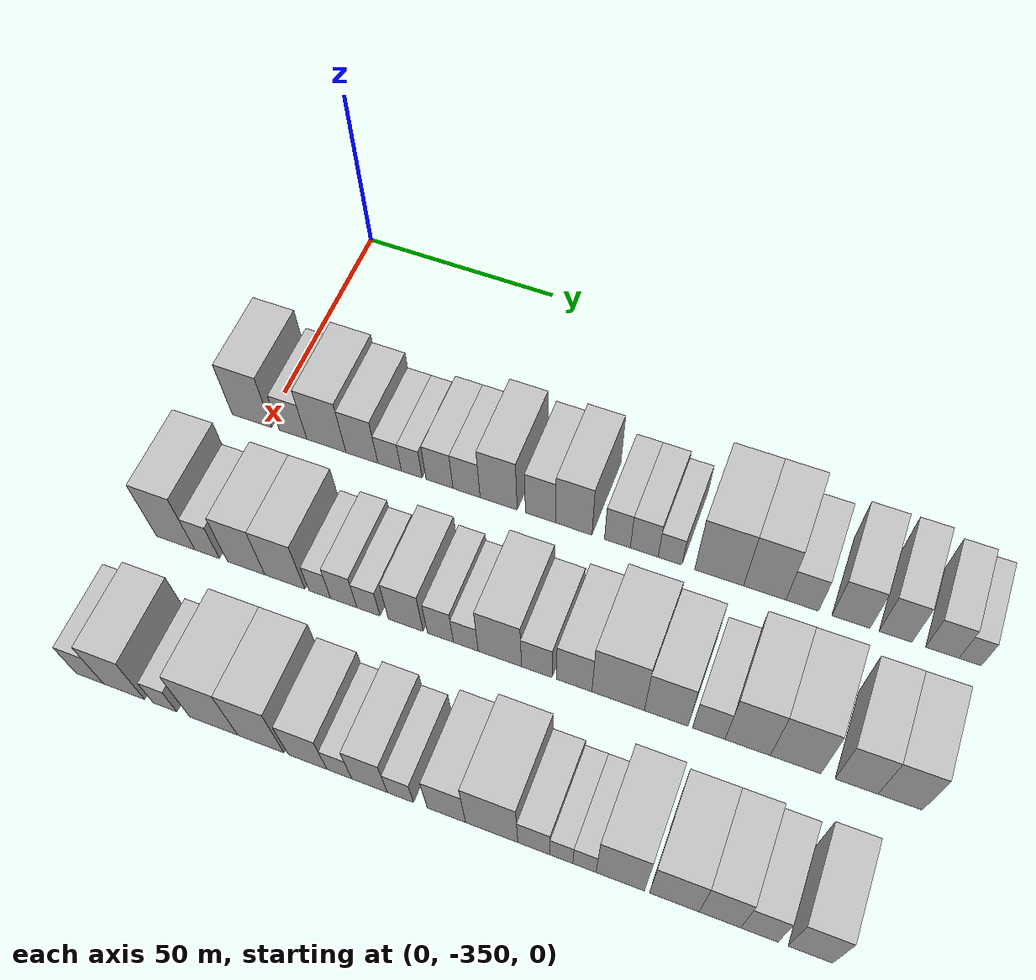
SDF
<sdf version="1.6">
 <world name="default">
  <model name="building_1">
   <static>1</static>
   <pose>50.0000 -353.7847 0 0.000000 0.000000 0.000000</pose>
   <link name="link">
    <pose>0 0 10.50 0 0 0</pose>
    <collision name="collision"><geometry><box><size>20.0000 10.4306 21.0000</size></box></geometry></collision>
    <visual name="visual">
     <cast_shadows>0</cast_shadows>
     <geometry><box><size>20.0000 10.4306 21.0000</size></box></geometry>
     <material>
      <script>
       <uri>model://HANNAS_wall/materials/scripts</uri>
       <uri>model://HANNAS_wall/materials/textures</uri>
       <name>vrc/HANNAS_wall</name>
      </script>
     </material>
    </visual>
   </link>
  </model>
  <model name="building_2">
   <static>1</static>
   <pose>50.0000 -342.9612 0 0.000000 0.000000 0.000000</pose>
   <link name="link">
    <pose>0 0 7.50 0 0 0</pose>
    <collision name="collision"><geometry><box><size>20.0000 7.2164 15.0000</size></box></geometry></collision>
    <visual name="visual">
     <cast_shadows>0</cast_shadows>
     <geometry><box><size>20.0000 7.2164 15.0000</size></box></geometry>
     <material>
      <script>
       <uri>model://HANNAS_wall/materials/scripts</uri>
       <uri>model://HANNAS_wall/materials/textures</uri>
       <name>vrc/HANNAS_wall</name>
      </script>
     </material>
    </visual>
   </link>
  </model>
  <model name="building_3">
   <static>1</static>
   <pose>50.0000 -334.2786 0 0.000000 0.000000 0.000000</pose>
   <link name="link">
    <pose>0 0 10.50 0 0 0</pose>
    <collision name="collision"><geometry><box><size>20.0000 10.1488 21.0000</size></box></geometry></collision>
    <visual name="visual">
     <cast_shadows>0</cast_shadows>
     <geometry><box><size>20.0000 10.1488 21.0000</size></box></geometry>
     <material>
      <script>
       <uri>model://HANNAS_wall/materials/scripts</uri>
       <uri>model://HANNAS_wall/materials/textures</uri>
       <name>vrc/HANNAS_wall</name>
      </script>
     </material>
    </visual>
   </link>
  </model>
  <model name="building_4">
   <static>1</static>
   <pose>50.0000 -325.1051 0 0.000000 0.000000 0.000000</pose>
   <link name="link">
    <pose>0 0 9.00 0 0 0</pose>
    <collision name="collision"><geometry><box><size>20.0000 8.1981 18.0000</size></box></geometry></collision>
    <visual name="visual">
     <cast_shadows>0</cast_shadows>
     <geometry><box><size>20.0000 8.1981 18.0000</size></box></geometry>
     <material>
      <script>
       <uri>model://HANNAS_wall/materials/scripts</uri>
       <uri>model://HANNAS_wall/materials/textures</uri>
       <name>vrc/HANNAS_wall</name>
      </script>
     </material>
    </visual>
   </link>
  </model>
  <model name="building_5">
   <static>1</static>
   <pose>50.0000 -318.0241 0 0.000000 0.000000 0.000000</pose>
   <link name="link">
    <pose>0 0 6.00 0 0 0</pose>
    <collision name="collision"><geometry><box><size>20.0000 5.9638 12.0000</size></box></geometry></collision>
    <visual name="visual">
     <cast_shadows>0</cast_shadows>
     <geometry><box><size>20.0000 5.9638 12.0000</size></box></geometry>
     <material>
      <script>
       <uri>model://HANNAS_wall/materials/scripts</uri>
       <uri>model://HANNAS_wall/materials/textures</uri>
       <name>vrc/HANNAS_wall</name>
      </script>
     </material>
    </visual>
   </link>
  </model>
  <model name="building_6">
   <static>1</static>
   <pose>50.0000 -312.4131 0 0.000000 0.000000 0.000000</pose>
   <link name="link">
    <pose>0 0 6.00 0 0 0</pose>
    <collision name="collision"><geometry><box><size>20.0000 5.2583 12.0000</size></box></geometry></collision>
    <visual name="visual">
     <cast_shadows>0</cast_shadows>
     <geometry><box><size>20.0000 5.2583 12.0000</size></box></geometry>
     <material>
      <script>
       <uri>model://HANNAS_wall/materials/scripts</uri>
       <uri>model://HANNAS_wall/materials/textures</uri>
       <name>vrc/HANNAS_wall</name>
      </script>
     </material>
    </visual>
   </link>
  </model>
  <model name="building_7">
   <static>1</static>
   <pose>50.0000 -305.4140 0 0.000000 0.000000 0.000000</pose>
   <link name="link">
    <pose>0 0 7.50 0 0 0</pose>
    <collision name="collision"><geometry><box><size>20.0000 6.7399 15.0000</size></box></geometry></collision>
    <visual name="visual">
     <cast_shadows>0</cast_shadows>
     <geometry><box><size>20.0000 6.7399 15.0000</size></box></geometry>
     <material>
      <script>
       <uri>model://HANNAS_wall/materials/scripts</uri>
       <uri>model://HANNAS_wall/materials/textures</uri>
       <name>vrc/HANNAS_wall</name>
      </script>
     </material>
    </visual>
   </link>
  </model>
  <model name="building_8">
   <static>1</static>
   <pose>50.0000 -298.6672 0 0.000000 0.000000 0.000000</pose>
   <link name="link">
    <pose>0 0 7.50 0 0 0</pose>
    <collision name="collision"><geometry><box><size>20.0000 6.7537 15.0000</size></box></geometry></collision>
    <visual name="visual">
     <cast_shadows>0</cast_shadows>
     <geometry><box><size>20.0000 6.7537 15.0000</size></box></geometry>
     <material>
      <script>
       <uri>model://HANNAS_wall/materials/scripts</uri>
       <uri>model://HANNAS_wall/materials/textures</uri>
       <name>vrc/HANNAS_wall</name>
      </script>
     </material>
    </visual>
   </link>
  </model>
  <model name="building_9">
   <static>1</static>
   <pose>50.0000 -290.7151 0 0.000000 0.000000 0.000000</pose>
   <link name="link">
    <pose>0 0 10.50 0 0 0</pose>
    <collision name="collision"><geometry><box><size>20.0000 9.1503 21.0000</size></box></geometry></collision>
    <visual name="visual">
     <cast_shadows>0</cast_shadows>
     <geometry><box><size>20.0000 9.1503 21.0000</size></box></geometry>
     <material>
      <script>
       <uri>model://HANNAS_wall/materials/scripts</uri>
       <uri>model://HANNAS_wall/materials/textures</uri>
       <name>vrc/HANNAS_wall</name>
      </script>
     </material>
    </visual>
   </link>
  </model>
  <model name="building_10">
   <static>1</static>
   <pose>50.0000 -280.4704 0 0.000000 0.000000 0.000000</pose>
   <link name="link">
    <pose>0 0 9.00 0 0 0</pose>
    <collision name="collision"><geometry><box><size>20.0000 7.3392 18.0000</size></box></geometry></collision>
    <visual name="visual">
     <cast_shadows>0</cast_shadows>
     <geometry><box><size>20.0000 7.3392 18.0000</size></box></geometry>
     <material>
      <script>
       <uri>model://HANNAS_wall/materials/scripts</uri>
       <uri>model://HANNAS_wall/materials/textures</uri>
       <name>vrc/HANNAS_wall</name>
      </script>
     </material>
    </visual>
   </link>
  </model>
  <model name="building_11">
   <static>1</static>
   <pose>50.0000 -272.4009 0 0.000000 0.000000 0.000000</pose>
   <link name="link">
    <pose>0 0 10.50 0 0 0</pose>
    <collision name="collision"><geometry><box><size>20.0000 8.7998 21.0000</size></box></geometry></collision>
    <visual name="visual">
     <cast_shadows>0</cast_shadows>
     <geometry><box><size>20.0000 8.7998 21.0000</size></box></geometry>
     <material>
      <script>
       <uri>model://HANNAS_wall/materials/scripts</uri>
       <uri>model://HANNAS_wall/materials/textures</uri>
       <name>vrc/HANNAS_wall</name>
      </script>
     </material>
    </visual>
   </link>
  </model>
  <model name="building_12">
   <static>1</static>
   <pose>50.0000 -261.9339 0 0.000000 0.000000 0.000000</pose>
   <link name="link">
    <pose>0 0 7.50 0 0 0</pose>
    <collision name="collision"><geometry><box><size>20.0000 6.1342 15.0000</size></box></geometry></collision>
    <visual name="visual">
     <cast_shadows>0</cast_shadows>
     <geometry><box><size>20.0000 6.1342 15.0000</size></box></geometry>
     <material>
      <script>
       <uri>model://HANNAS_wall/materials/scripts</uri>
       <uri>model://HANNAS_wall/materials/textures</uri>
       <name>vrc/HANNAS_wall</name>
      </script>
     </material>
    </visual>
   </link>
  </model>
  <model name="building_13">
   <static>1</static>
   <pose>50.0000 -255.5714 0 0.000000 0.000000 0.000000</pose>
   <link name="link">
    <pose>0 0 7.50 0 0 0</pose>
    <collision name="collision"><geometry><box><size>20.0000 6.5909 15.0000</size></box></geometry></collision>
    <visual name="visual">
     <cast_shadows>0</cast_shadows>
     <geometry><box><size>20.0000 6.5909 15.0000</size></box></geometry>
     <material>
      <script>
       <uri>model://HANNAS_wall/materials/scripts</uri>
       <uri>model://HANNAS_wall/materials/textures</uri>
       <name>vrc/HANNAS_wall</name>
      </script>
     </material>
    </visual>
   </link>
  </model>
  <model name="building_14">
   <static>1</static>
   <pose>50.0000 -249.4801 0 0.000000 0.000000 0.000000</pose>
   <link name="link">
    <pose>0 0 6.00 0 0 0</pose>
    <collision name="collision"><geometry><box><size>20.0000 5.5918 12.0000</size></box></geometry></collision>
    <visual name="visual">
     <cast_shadows>0</cast_shadows>
     <geometry><box><size>20.0000 5.5918 12.0000</size></box></geometry>
     <material>
      <script>
       <uri>model://HANNAS_wall/materials/scripts</uri>
       <uri>model://HANNAS_wall/materials/textures</uri>
       <name>vrc/HANNAS_wall</name>
      </script>
     </material>
    </visual>
   </link>
  </model>
  <model name="building_15">
   <static>1</static>
   <pose>50.0000 -238.0136 0 0.000000 0.000000 0.000000</pose>
   <link name="link">
    <pose>0 0 12.00 0 0 0</pose>
    <collision name="collision"><geometry><box><size>20.0000 11.3412 24.0000</size></box></geometry></collision>
    <visual name="visual">
     <cast_shadows>0</cast_shadows>
     <geometry><box><size>20.0000 11.3412 24.0000</size></box></geometry>
     <material>
      <script>
       <uri>model://HANNAS_wall/materials/scripts</uri>
       <uri>model://HANNAS_wall/materials/textures</uri>
       <name>vrc/HANNAS_wall</name>
      </script>
     </material>
    </visual>
   </link>
  </model>
  <model name="building_16">
   <static>1</static>
   <pose>50.0000 -227.4978 0 0.000000 0.000000 0.000000</pose>
   <link name="link">
    <pose>0 0 12.00 0 0 0</pose>
    <collision name="collision"><geometry><box><size>20.0000 9.6904 24.0000</size></box></geometry></collision>
    <visual name="visual">
     <cast_shadows>0</cast_shadows>
     <geometry><box><size>20.0000 9.6904 24.0000</size></box></geometry>
     <material>
      <script>
       <uri>model://HANNAS_wall/materials/scripts</uri>
       <uri>model://HANNAS_wall/materials/textures</uri>
       <name>vrc/HANNAS_wall</name>
      </script>
     </material>
    </visual>
   </link>
  </model>
  <model name="building_17">
   <static>1</static>
   <pose>50.0000 -218.9621 0 0.000000 0.000000 0.000000</pose>
   <link name="link">
    <pose>0 0 7.50 0 0 0</pose>
    <collision name="collision"><geometry><box><size>20.0000 7.3808 15.0000</size></box></geometry></collision>
    <visual name="visual">
     <cast_shadows>0</cast_shadows>
     <geometry><box><size>20.0000 7.3808 15.0000</size></box></geometry>
     <material>
      <script>
       <uri>model://HANNAS_wall/materials/scripts</uri>
       <uri>model://HANNAS_wall/materials/textures</uri>
       <name>vrc/HANNAS_wall</name>
      </script>
     </material>
    </visual>
   </link>
  </model>
  <model name="building_18">
   <static>1</static>
   <pose>50.0000 -207.9963 0 0.000000 0.000000 0.000000</pose>
   <link name="link">
    <pose>0 0 9.00 0 0 0</pose>
    <collision name="collision"><geometry><box><size>20.0000 8.5509 18.0000</size></box></geometry></collision>
    <visual name="visual">
     <cast_shadows>0</cast_shadows>
     <geometry><box><size>20.0000 8.5509 18.0000</size></box></geometry>
     <material>
      <script>
       <uri>model://HANNAS_wall/materials/scripts</uri>
       <uri>model://HANNAS_wall/materials/textures</uri>
       <name>vrc/HANNAS_wall</name>
      </script>
     </material>
    </visual>
   </link>
  </model>
  <model name="building_19">
   <static>1</static>
   <pose>50.0000 -198.0948 0 0.000000 0.000000 0.000000</pose>
   <link name="link">
    <pose>0 0 9.00 0 0 0</pose>
    <collision name="collision"><geometry><box><size>20.0000 7.2520 18.0000</size></box></geometry></collision>
    <visual name="visual">
     <cast_shadows>0</cast_shadows>
     <geometry><box><size>20.0000 7.2520 18.0000</size></box></geometry>
     <material>
      <script>
       <uri>model://HANNAS_wall/materials/scripts</uri>
       <uri>model://HANNAS_wall/materials/textures</uri>
       <name>vrc/HANNAS_wall</name>
      </script>
     </material>
    </visual>
   </link>
  </model>
  <model name="building_20">
   <static>1</static>
   <pose>50.0000 -187.8145 0 0.000000 0.000000 0.000000</pose>
   <link name="link">
    <pose>0 0 7.50 0 0 0</pose>
    <collision name="collision"><geometry><box><size>20.0000 7.3087 15.0000</size></box></geometry></collision>
    <visual name="visual">
     <cast_shadows>0</cast_shadows>
     <geometry><box><size>20.0000 7.3087 15.0000</size></box></geometry>
     <material>
      <script>
       <uri>model://HANNAS_wall/materials/scripts</uri>
       <uri>model://HANNAS_wall/materials/textures</uri>
       <name>vrc/HANNAS_wall</name>
      </script>
     </material>
    </visual>
   </link>
  </model>
  <model name="building_21">
   <static>1</static>
   <pose>50.0000 -181.7357 0 0.000000 0.000000 0.000000</pose>
   <link name="link">
    <pose>0 0 6.00 0 0 0</pose>
    <collision name="collision"><geometry><box><size>20.0000 4.8490 12.0000</size></box></geometry></collision>
    <visual name="visual">
     <cast_shadows>0</cast_shadows>
     <geometry><box><size>20.0000 4.8490 12.0000</size></box></geometry>
     <material>
      <script>
       <uri>model://HANNAS_wall/materials/scripts</uri>
       <uri>model://HANNAS_wall/materials/textures</uri>
       <name>vrc/HANNAS_wall</name>
      </script>
     </material>
    </visual>
   </link>
  </model>
  <model name="building_84">
   <static>1</static>
   <pose>85.0000 -355.1100 0 0.000000 0.000000 0.000000</pose>
   <link name="link">
    <pose>0 0 12.00 0 0 0</pose>
    <collision name="collision"><geometry><box><size>20.0000 9.7801 24.0000</size></box></geometry></collision>
    <visual name="visual">
     <cast_shadows>0</cast_shadows>
     <geometry><box><size>20.0000 9.7801 24.0000</size></box></geometry>
     <material>
      <script>
       <uri>model://HANNAS_wall/materials/scripts</uri>
       <uri>model://HANNAS_wall/materials/textures</uri>
       <name>vrc/HANNAS_wall</name>
      </script>
     </material>
    </visual>
   </link>
  </model>
  <model name="building_85">
   <static>1</static>
   <pose>85.0000 -347.1397 0 0.000000 0.000000 0.000000</pose>
   <link name="link">
    <pose>0 0 7.50 0 0 0</pose>
    <collision name="collision"><geometry><box><size>20.0000 6.1606 15.0000</size></box></geometry></collision>
    <visual name="visual">
     <cast_shadows>0</cast_shadows>
     <geometry><box><size>20.0000 6.1606 15.0000</size></box></geometry>
     <material>
      <script>
       <uri>model://HANNAS_wall/materials/scripts</uri>
       <uri>model://HANNAS_wall/materials/textures</uri>
       <name>vrc/HANNAS_wall</name>
      </script>
     </material>
    </visual>
   </link>
  </model>
  <model name="building_86">
   <static>1</static>
   <pose>85.0000 -337.3845 0 0.000000 0.000000 0.000000</pose>
   <link name="link">
    <pose>0 0 10.50 0 0 0</pose>
    <collision name="collision"><geometry><box><size>20.0000 9.3498 21.0000</size></box></geometry></collision>
    <visual name="visual">
     <cast_shadows>0</cast_shadows>
     <geometry><box><size>20.0000 9.3498 21.0000</size></box></geometry>
     <material>
      <script>
       <uri>model://HANNAS_wall/materials/scripts</uri>
       <uri>model://HANNAS_wall/materials/textures</uri>
       <name>vrc/HANNAS_wall</name>
      </script>
     </material>
    </visual>
   </link>
  </model>
  <model name="building_87">
   <static>1</static>
   <pose>85.0000 -327.7934 0 0.000000 0.000000 0.000000</pose>
   <link name="link">
    <pose>0 0 10.50 0 0 0</pose>
    <collision name="collision"><geometry><box><size>20.0000 9.8323 21.0000</size></box></geometry></collision>
    <visual name="visual">
     <cast_shadows>0</cast_shadows>
     <geometry><box><size>20.0000 9.8323 21.0000</size></box></geometry>
     <material>
      <script>
       <uri>model://HANNAS_wall/materials/scripts</uri>
       <uri>model://HANNAS_wall/materials/textures</uri>
       <name>vrc/HANNAS_wall</name>
      </script>
     </material>
    </visual>
   </link>
  </model>
  <model name="building_88">
   <static>1</static>
   <pose>85.0000 -319.2483 0 0.000000 0.000000 0.000000</pose>
   <link name="link">
    <pose>0 0 6.00 0 0 0</pose>
    <collision name="collision"><geometry><box><size>20.0000 5.2579 12.0000</size></box></geometry></collision>
    <visual name="visual">
     <cast_shadows>0</cast_shadows>
     <geometry><box><size>20.0000 5.2579 12.0000</size></box></geometry>
     <material>
      <script>
       <uri>model://HANNAS_wall/materials/scripts</uri>
       <uri>model://HANNAS_wall/materials/textures</uri>
       <name>vrc/HANNAS_wall</name>
      </script>
     </material>
    </visual>
   </link>
  </model>
  <model name="building_89">
   <static>1</static>
   <pose>85.0000 -313.4360 0 0.000000 0.000000 0.000000</pose>
   <link name="link">
    <pose>0 0 7.50 0 0 0</pose>
    <collision name="collision"><geometry><box><size>20.0000 6.3667 15.0000</size></box></geometry></collision>
    <visual name="visual">
     <cast_shadows>0</cast_shadows>
     <geometry><box><size>20.0000 6.3667 15.0000</size></box></geometry>
     <material>
      <script>
       <uri>model://HANNAS_wall/materials/scripts</uri>
       <uri>model://HANNAS_wall/materials/textures</uri>
       <name>vrc/HANNAS_wall</name>
      </script>
     </material>
    </visual>
   </link>
  </model>
  <model name="building_90">
   <static>1</static>
   <pose>85.0000 -307.4719 0 0.000000 0.000000 0.000000</pose>
   <link name="link">
    <pose>0 0 6.00 0 0 0</pose>
    <collision name="collision"><geometry><box><size>20.0000 5.5613 12.0000</size></box></geometry></collision>
    <visual name="visual">
     <cast_shadows>0</cast_shadows>
     <geometry><box><size>20.0000 5.5613 12.0000</size></box></geometry>
     <material>
      <script>
       <uri>model://HANNAS_wall/materials/scripts</uri>
       <uri>model://HANNAS_wall/materials/textures</uri>
       <name>vrc/HANNAS_wall</name>
      </script>
     </material>
    </visual>
   </link>
  </model>
  <model name="building_91">
   <static>1</static>
   <pose>85.0000 -298.5580 0 0.000000 0.000000 0.000000</pose>
   <link name="link">
    <pose>0 0 9.00 0 0 0</pose>
    <collision name="collision"><geometry><box><size>20.0000 8.2666 18.0000</size></box></geometry></collision>
    <visual name="visual">
     <cast_shadows>0</cast_shadows>
     <geometry><box><size>20.0000 8.2666 18.0000</size></box></geometry>
     <material>
      <script>
       <uri>model://HANNAS_wall/materials/scripts</uri>
       <uri>model://HANNAS_wall/materials/textures</uri>
       <name>vrc/HANNAS_wall</name>
      </script>
     </material>
    </visual>
   </link>
  </model>
  <model name="building_92">
   <static>1</static>
   <pose>85.0000 -290.3776 0 0.000000 0.000000 0.000000</pose>
   <link name="link">
    <pose>0 0 7.50 0 0 0</pose>
    <collision name="collision"><geometry><box><size>20.0000 6.0943 15.0000</size></box></geometry></collision>
    <visual name="visual">
     <cast_shadows>0</cast_shadows>
     <geometry><box><size>20.0000 6.0943 15.0000</size></box></geometry>
     <material>
      <script>
       <uri>model://HANNAS_wall/materials/scripts</uri>
       <uri>model://HANNAS_wall/materials/textures</uri>
       <name>vrc/HANNAS_wall</name>
      </script>
     </material>
    </visual>
   </link>
  </model>
  <model name="building_93">
   <static>1</static>
   <pose>85.0000 -284.4278 0 0.000000 0.000000 0.000000</pose>
   <link name="link">
    <pose>0 0 6.00 0 0 0</pose>
    <collision name="collision"><geometry><box><size>20.0000 5.8053 12.0000</size></box></geometry></collision>
    <visual name="visual">
     <cast_shadows>0</cast_shadows>
     <geometry><box><size>20.0000 5.8053 12.0000</size></box></geometry>
     <material>
      <script>
       <uri>model://HANNAS_wall/materials/scripts</uri>
       <uri>model://HANNAS_wall/materials/textures</uri>
       <name>vrc/HANNAS_wall</name>
      </script>
     </material>
    </visual>
   </link>
  </model>
  <model name="building_94">
   <static>1</static>
   <pose>85.0000 -276.5124 0 0.000000 0.000000 0.000000</pose>
   <link name="link">
    <pose>0 0 10.50 0 0 0</pose>
    <collision name="collision"><geometry><box><size>20.0000 10.0254 21.0000</size></box></geometry></collision>
    <visual name="visual">
     <cast_shadows>0</cast_shadows>
     <geometry><box><size>20.0000 10.0254 21.0000</size></box></geometry>
     <material>
      <script>
       <uri>model://HANNAS_wall/materials/scripts</uri>
       <uri>model://HANNAS_wall/materials/textures</uri>
       <name>vrc/HANNAS_wall</name>
      </script>
     </material>
    </visual>
   </link>
  </model>
  <model name="building_95">
   <static>1</static>
   <pose>85.0000 -268.0182 0 0.000000 0.000000 0.000000</pose>
   <link name="link">
    <pose>0 0 7.50 0 0 0</pose>
    <collision name="collision"><geometry><box><size>20.0000 6.9631 15.0000</size></box></geometry></collision>
    <visual name="visual">
     <cast_shadows>0</cast_shadows>
     <geometry><box><size>20.0000 6.9631 15.0000</size></box></geometry>
     <material>
      <script>
       <uri>model://HANNAS_wall/materials/scripts</uri>
       <uri>model://HANNAS_wall/materials/textures</uri>
       <name>vrc/HANNAS_wall</name>
      </script>
     </material>
    </visual>
   </link>
  </model>
  <model name="building_96">
   <static>1</static>
   <pose>85.0000 -259.5233 0 0.000000 0.000000 0.000000</pose>
   <link name="link">
    <pose>0 0 9.00 0 0 0</pose>
    <collision name="collision"><geometry><box><size>20.0000 8.0266 18.0000</size></box></geometry></collision>
    <visual name="visual">
     <cast_shadows>0</cast_shadows>
     <geometry><box><size>20.0000 8.0266 18.0000</size></box></geometry>
     <material>
      <script>
       <uri>model://HANNAS_wall/materials/scripts</uri>
       <uri>model://HANNAS_wall/materials/textures</uri>
       <name>vrc/HANNAS_wall</name>
      </script>
     </material>
    </visual>
   </link>
  </model>
  <model name="building_97">
   <static>1</static>
   <pose>85.0000 -249.6416 0 0.000000 0.000000 0.000000</pose>
   <link name="link">
    <pose>0 0 12.00 0 0 0</pose>
    <collision name="collision"><geometry><box><size>20.0000 11.7367 24.0000</size></box></geometry></collision>
    <visual name="visual">
     <cast_shadows>0</cast_shadows>
     <geometry><box><size>20.0000 11.7367 24.0000</size></box></geometry>
     <material>
      <script>
       <uri>model://HANNAS_wall/materials/scripts</uri>
       <uri>model://HANNAS_wall/materials/textures</uri>
       <name>vrc/HANNAS_wall</name>
      </script>
     </material>
    </visual>
   </link>
  </model>
  <model name="building_98">
   <static>1</static>
   <pose>85.0000 -238.9714 0 0.000000 0.000000 0.000000</pose>
   <link name="link">
    <pose>0 0 10.50 0 0 0</pose>
    <collision name="collision"><geometry><box><size>20.0000 9.6037 21.0000</size></box></geometry></collision>
    <visual name="visual">
     <cast_shadows>0</cast_shadows>
     <geometry><box><size>20.0000 9.6037 21.0000</size></box></geometry>
     <material>
      <script>
       <uri>model://HANNAS_wall/materials/scripts</uri>
       <uri>model://HANNAS_wall/materials/textures</uri>
       <name>vrc/HANNAS_wall</name>
      </script>
     </material>
    </visual>
   </link>
  </model>
  <model name="building_99">
   <static>1</static>
   <pose>85.0000 -229.6328 0 0.000000 0.000000 0.000000</pose>
   <link name="link">
    <pose>0 0 7.50 0 0 0</pose>
    <collision name="collision"><geometry><box><size>20.0000 7.0736 15.0000</size></box></geometry></collision>
    <visual name="visual">
     <cast_shadows>0</cast_shadows>
     <geometry><box><size>20.0000 7.0736 15.0000</size></box></geometry>
     <material>
      <script>
       <uri>model://HANNAS_wall/materials/scripts</uri>
       <uri>model://HANNAS_wall/materials/textures</uri>
       <name>vrc/HANNAS_wall</name>
      </script>
     </material>
    </visual>
   </link>
  </model>
  <model name="building_100">
   <static>1</static>
   <pose>85.0000 -221.1986 0 0.000000 0.000000 0.000000</pose>
   <link name="link">
    <pose>0 0 12.00 0 0 0</pose>
    <collision name="collision"><geometry><box><size>20.0000 9.7948 24.0000</size></box></geometry></collision>
    <visual name="visual">
     <cast_shadows>0</cast_shadows>
     <geometry><box><size>20.0000 9.7948 24.0000</size></box></geometry>
     <material>
      <script>
       <uri>model://HANNAS_wall/materials/scripts</uri>
       <uri>model://HANNAS_wall/materials/textures</uri>
       <name>vrc/HANNAS_wall</name>
      </script>
     </material>
    </visual>
   </link>
  </model>
  <model name="building_101">
   <static>1</static>
   <pose>85.0000 -210.9186 0 0.000000 0.000000 0.000000</pose>
   <link name="link">
    <pose>0 0 12.00 0 0 0</pose>
    <collision name="collision"><geometry><box><size>20.0000 10.7653 24.0000</size></box></geometry></collision>
    <visual name="visual">
     <cast_shadows>0</cast_shadows>
     <geometry><box><size>20.0000 10.7653 24.0000</size></box></geometry>
     <material>
      <script>
       <uri>model://HANNAS_wall/materials/scripts</uri>
       <uri>model://HANNAS_wall/materials/textures</uri>
       <name>vrc/HANNAS_wall</name>
      </script>
     </material>
    </visual>
   </link>
  </model>
  <model name="building_102">
   <static>1</static>
   <pose>85.0000 -198.0443 0 0.000000 0.000000 0.000000</pose>
   <link name="link">
    <pose>0 0 10.50 0 0 0</pose>
    <collision name="collision"><geometry><box><size>20.0000 8.9832 21.0000</size></box></geometry></collision>
    <visual name="visual">
     <cast_shadows>0</cast_shadows>
     <geometry><box><size>20.0000 8.9832 21.0000</size></box></geometry>
     <material>
      <script>
       <uri>model://HANNAS_wall/materials/scripts</uri>
       <uri>model://HANNAS_wall/materials/textures</uri>
       <name>vrc/HANNAS_wall</name>
      </script>
     </material>
    </visual>
   </link>
  </model>
  <model name="building_103">
   <static>1</static>
   <pose>85.0000 -188.9369 0 0.000000 0.000000 0.000000</pose>
   <link name="link">
    <pose>0 0 10.50 0 0 0</pose>
    <collision name="collision"><geometry><box><size>20.0000 9.2317 21.0000</size></box></geometry></collision>
    <visual name="visual">
     <cast_shadows>0</cast_shadows>
     <geometry><box><size>20.0000 9.2317 21.0000</size></box></geometry>
     <material>
      <script>
       <uri>model://HANNAS_wall/materials/scripts</uri>
       <uri>model://HANNAS_wall/materials/textures</uri>
       <name>vrc/HANNAS_wall</name>
      </script>
     </material>
    </visual>
   </link>
  </model>
  <model name="building_167">
   <static>1</static>
   <pose>120.0000 -356.6731 0 0.000000 0.000000 0.000000</pose>
   <link name="link">
    <pose>0 0 7.50 0 0 0</pose>
    <collision name="collision"><geometry><box><size>20.0000 6.6537 15.0000</size></box></geometry></collision>
    <visual name="visual">
     <cast_shadows>0</cast_shadows>
     <geometry><box><size>20.0000 6.6537 15.0000</size></box></geometry>
     <material>
      <script>
       <uri>model://HANNAS_wall/materials/scripts</uri>
       <uri>model://HANNAS_wall/materials/textures</uri>
       <name>vrc/HANNAS_wall</name>
      </script>
     </material>
    </visual>
   </link>
  </model>
  <model name="building_168">
   <static>1</static>
   <pose>120.0000 -348.3705 0 0.000000 0.000000 0.000000</pose>
   <link name="link">
    <pose>0 0 10.50 0 0 0</pose>
    <collision name="collision"><geometry><box><size>20.0000 9.9516 21.0000</size></box></geometry></collision>
    <visual name="visual">
     <cast_shadows>0</cast_shadows>
     <geometry><box><size>20.0000 9.9516 21.0000</size></box></geometry>
     <material>
      <script>
       <uri>model://HANNAS_wall/materials/scripts</uri>
       <uri>model://HANNAS_wall/materials/textures</uri>
       <name>vrc/HANNAS_wall</name>
      </script>
     </material>
    </visual>
   </link>
  </model>
  <model name="building_169">
   <static>1</static>
   <pose>120.0000 -338.5515 0 0.000000 0.000000 0.000000</pose>
   <link name="link">
    <pose>0 0 6.00 0 0 0</pose>
    <collision name="collision"><geometry><box><size>20.0000 5.6863 12.0000</size></box></geometry></collision>
    <visual name="visual">
     <cast_shadows>0</cast_shadows>
     <geometry><box><size>20.0000 5.6863 12.0000</size></box></geometry>
     <material>
      <script>
       <uri>model://HANNAS_wall/materials/scripts</uri>
       <uri>model://HANNAS_wall/materials/textures</uri>
       <name>vrc/HANNAS_wall</name>
      </script>
     </material>
    </visual>
   </link>
  </model>
  <model name="building_170">
   <static>1</static>
   <pose>120.0000 -327.0534 0 0.000000 0.000000 0.000000</pose>
   <link name="link">
    <pose>0 0 12.00 0 0 0</pose>
    <collision name="collision"><geometry><box><size>20.0000 11.3098 24.0000</size></box></geometry></collision>
    <visual name="visual">
     <cast_shadows>0</cast_shadows>
     <geometry><box><size>20.0000 11.3098 24.0000</size></box></geometry>
     <material>
      <script>
       <uri>model://HANNAS_wall/materials/scripts</uri>
       <uri>model://HANNAS_wall/materials/textures</uri>
       <name>vrc/HANNAS_wall</name>
      </script>
     </material>
    </visual>
   </link>
  </model>
  <model name="building_171">
   <static>1</static>
   <pose>120.0000 -316.0463 0 0.000000 0.000000 0.000000</pose>
   <link name="link">
    <pose>0 0 12.00 0 0 0</pose>
    <collision name="collision"><geometry><box><size>20.0000 10.7045 24.0000</size></box></geometry></collision>
    <visual name="visual">
     <cast_shadows>0</cast_shadows>
     <geometry><box><size>20.0000 10.7045 24.0000</size></box></geometry>
     <material>
      <script>
       <uri>model://HANNAS_wall/materials/scripts</uri>
       <uri>model://HANNAS_wall/materials/textures</uri>
       <name>vrc/HANNAS_wall</name>
      </script>
     </material>
    </visual>
   </link>
  </model>
  <model name="building_172">
   <static>1</static>
   <pose>120.0000 -305.2733 0 0.000000 0.000000 0.000000</pose>
   <link name="link">
    <pose>0 0 9.00 0 0 0</pose>
    <collision name="collision"><geometry><box><size>20.0000 8.8414 18.0000</size></box></geometry></collision>
    <visual name="visual">
     <cast_shadows>0</cast_shadows>
     <geometry><box><size>20.0000 8.8414 18.0000</size></box></geometry>
     <material>
      <script>
       <uri>model://HANNAS_wall/materials/scripts</uri>
       <uri>model://HANNAS_wall/materials/textures</uri>
       <name>vrc/HANNAS_wall</name>
      </script>
     </material>
    </visual>
   </link>
  </model>
  <model name="building_173">
   <static>1</static>
   <pose>120.0000 -298.0367 0 0.000000 0.000000 0.000000</pose>
   <link name="link">
    <pose>0 0 6.00 0 0 0</pose>
    <collision name="collision"><geometry><box><size>20.0000 5.6318 12.0000</size></box></geometry></collision>
    <visual name="visual">
     <cast_shadows>0</cast_shadows>
     <geometry><box><size>20.0000 5.6318 12.0000</size></box></geometry>
     <material>
      <script>
       <uri>model://HANNAS_wall/materials/scripts</uri>
       <uri>model://HANNAS_wall/materials/textures</uri>
       <name>vrc/HANNAS_wall</name>
      </script>
     </material>
    </visual>
   </link>
  </model>
  <model name="building_174">
   <static>1</static>
   <pose>120.0000 -291.2380 0 0.000000 0.000000 0.000000</pose>
   <link name="link">
    <pose>0 0 9.00 0 0 0</pose>
    <collision name="collision"><geometry><box><size>20.0000 7.9657 18.0000</size></box></geometry></collision>
    <visual name="visual">
     <cast_shadows>0</cast_shadows>
     <geometry><box><size>20.0000 7.9657 18.0000</size></box></geometry>
     <material>
      <script>
       <uri>model://HANNAS_wall/materials/scripts</uri>
       <uri>model://HANNAS_wall/materials/textures</uri>
       <name>vrc/HANNAS_wall</name>
      </script>
     </material>
    </visual>
   </link>
  </model>
  <model name="building_175">
   <static>1</static>
   <pose>120.0000 -284.3565 0 0.000000 0.000000 0.000000</pose>
   <link name="link">
    <pose>0 0 6.00 0 0 0</pose>
    <collision name="collision"><geometry><box><size>20.0000 5.7972 12.0000</size></box></geometry></collision>
    <visual name="visual">
     <cast_shadows>0</cast_shadows>
     <geometry><box><size>20.0000 5.7972 12.0000</size></box></geometry>
     <material>
      <script>
       <uri>model://HANNAS_wall/materials/scripts</uri>
       <uri>model://HANNAS_wall/materials/textures</uri>
       <name>vrc/HANNAS_wall</name>
      </script>
     </material>
    </visual>
   </link>
  </model>
  <model name="building_176">
   <static>1</static>
   <pose>120.0000 -274.2479 0 0.000000 0.000000 0.000000</pose>
   <link name="link">
    <pose>0 0 9.00 0 0 0</pose>
    <collision name="collision"><geometry><box><size>20.0000 8.4200 18.0000</size></box></geometry></collision>
    <visual name="visual">
     <cast_shadows>0</cast_shadows>
     <geometry><box><size>20.0000 8.4200 18.0000</size></box></geometry>
     <material>
      <script>
       <uri>model://HANNAS_wall/materials/scripts</uri>
       <uri>model://HANNAS_wall/materials/textures</uri>
       <name>vrc/HANNAS_wall</name>
      </script>
     </material>
    </visual>
   </link>
  </model>
  <model name="building_177">
   <static>1</static>
   <pose>120.0000 -264.3788 0 0.000000 0.000000 0.000000</pose>
   <link name="link">
    <pose>0 0 12.00 0 0 0</pose>
    <collision name="collision"><geometry><box><size>20.0000 11.3182 24.0000</size></box></geometry></collision>
    <visual name="visual">
     <cast_shadows>0</cast_shadows>
     <geometry><box><size>20.0000 11.3182 24.0000</size></box></geometry>
     <material>
      <script>
       <uri>model://HANNAS_wall/materials/scripts</uri>
       <uri>model://HANNAS_wall/materials/textures</uri>
       <name>vrc/HANNAS_wall</name>
      </script>
     </material>
    </visual>
   </link>
  </model>
  <model name="building_178">
   <static>1</static>
   <pose>120.0000 -255.3024 0 0.000000 0.000000 0.000000</pose>
   <link name="link">
    <pose>0 0 7.50 0 0 0</pose>
    <collision name="collision"><geometry><box><size>20.0000 6.8346 15.0000</size></box></geometry></collision>
    <visual name="visual">
     <cast_shadows>0</cast_shadows>
     <geometry><box><size>20.0000 6.8346 15.0000</size></box></geometry>
     <material>
      <script>
       <uri>model://HANNAS_wall/materials/scripts</uri>
       <uri>model://HANNAS_wall/materials/textures</uri>
       <name>vrc/HANNAS_wall</name>
      </script>
     </material>
    </visual>
   </link>
  </model>
  <model name="building_179">
   <static>1</static>
   <pose>120.0000 -249.4502 0 0.000000 0.000000 0.000000</pose>
   <link name="link">
    <pose>0 0 6.00 0 0 0</pose>
    <collision name="collision"><geometry><box><size>20.0000 4.8698 12.0000</size></box></geometry></collision>
    <visual name="visual">
     <cast_shadows>0</cast_shadows>
     <geometry><box><size>20.0000 4.8698 12.0000</size></box></geometry>
     <material>
      <script>
       <uri>model://HANNAS_wall/materials/scripts</uri>
       <uri>model://HANNAS_wall/materials/textures</uri>
       <name>vrc/HANNAS_wall</name>
      </script>
     </material>
    </visual>
   </link>
  </model>
  <model name="building_180">
   <static>1</static>
   <pose>120.0000 -244.5617 0 0.000000 0.000000 0.000000</pose>
   <link name="link">
    <pose>0 0 6.00 0 0 0</pose>
    <collision name="collision"><geometry><box><size>20.0000 4.9073 12.0000</size></box></geometry></collision>
    <visual name="visual">
     <cast_shadows>0</cast_shadows>
     <geometry><box><size>20.0000 4.9073 12.0000</size></box></geometry>
     <material>
      <script>
       <uri>model://HANNAS_wall/materials/scripts</uri>
       <uri>model://HANNAS_wall/materials/textures</uri>
       <name>vrc/HANNAS_wall</name>
      </script>
     </material>
    </visual>
   </link>
  </model>
  <model name="building_181">
   <static>1</static>
   <pose>120.0000 -237.0498 0 0.000000 0.000000 0.000000</pose>
   <link name="link">
    <pose>0 0 12.00 0 0 0</pose>
    <collision name="collision"><geometry><box><size>20.0000 10.1164 24.0000</size></box></geometry></collision>
    <visual name="visual">
     <cast_shadows>0</cast_shadows>
     <geometry><box><size>20.0000 10.1164 24.0000</size></box></geometry>
     <material>
      <script>
       <uri>model://HANNAS_wall/materials/scripts</uri>
       <uri>model://HANNAS_wall/materials/textures</uri>
       <name>vrc/HANNAS_wall</name>
      </script>
     </material>
    </visual>
   </link>
  </model>
  <model name="building_182">
   <static>1</static>
   <pose>120.0000 -225.8672 0 0.000000 0.000000 0.000000</pose>
   <link name="link">
    <pose>0 0 10.50 0 0 0</pose>
    <collision name="collision"><geometry><box><size>20.0000 10.2489 21.0000</size></box></geometry></collision>
    <visual name="visual">
     <cast_shadows>0</cast_shadows>
     <geometry><box><size>20.0000 10.2489 21.0000</size></box></geometry>
     <material>
      <script>
       <uri>model://HANNAS_wall/materials/scripts</uri>
       <uri>model://HANNAS_wall/materials/textures</uri>
       <name>vrc/HANNAS_wall</name>
      </script>
     </material>
    </visual>
   </link>
  </model>
  <model name="building_183">
   <static>1</static>
   <pose>120.0000 -216.5220 0 0.000000 0.000000 0.000000</pose>
   <link name="link">
    <pose>0 0 10.50 0 0 0</pose>
    <collision name="collision"><geometry><box><size>20.0000 8.4414 21.0000</size></box></geometry></collision>
    <visual name="visual">
     <cast_shadows>0</cast_shadows>
     <geometry><box><size>20.0000 8.4414 21.0000</size></box></geometry>
     <material>
      <script>
       <uri>model://HANNAS_wall/materials/scripts</uri>
       <uri>model://HANNAS_wall/materials/textures</uri>
       <name>vrc/HANNAS_wall</name>
      </script>
     </material>
    </visual>
   </link>
  </model>
  <model name="building_184">
   <static>1</static>
   <pose>120.0000 -208.5600 0 0.000000 0.000000 0.000000</pose>
   <link name="link">
    <pose>0 0 9.00 0 0 0</pose>
    <collision name="collision"><geometry><box><size>20.0000 7.4828 18.0000</size></box></geometry></collision>
    <visual name="visual">
     <cast_shadows>0</cast_shadows>
     <geometry><box><size>20.0000 7.4828 18.0000</size></box></geometry>
     <material>
      <script>
       <uri>model://HANNAS_wall/materials/scripts</uri>
       <uri>model://HANNAS_wall/materials/textures</uri>
       <name>vrc/HANNAS_wall</name>
      </script>
     </material>
    </visual>
   </link>
  </model>
  <model name="building_185">
   <static>1</static>
   <pose>120.0000 -198.3891 0 0.000000 0.000000 0.000000</pose>
   <link name="link">
    <pose>0 0 10.50 0 0 0</pose>
    <collision name="collision"><geometry><box><size>20.0000 8.8589 21.0000</size></box></geometry></collision>
    <visual name="visual">
     <cast_shadows>0</cast_shadows>
     <geometry><box><size>20.0000 8.8589 21.0000</size></box></geometry>
     <material>
      <script>
       <uri>model://HANNAS_wall/materials/scripts</uri>
       <uri>model://HANNAS_wall/materials/textures</uri>
       <name>vrc/HANNAS_wall</name>
      </script>
     </material>
    </visual>
   </link>
  </model>
 </world>
</sdf>
